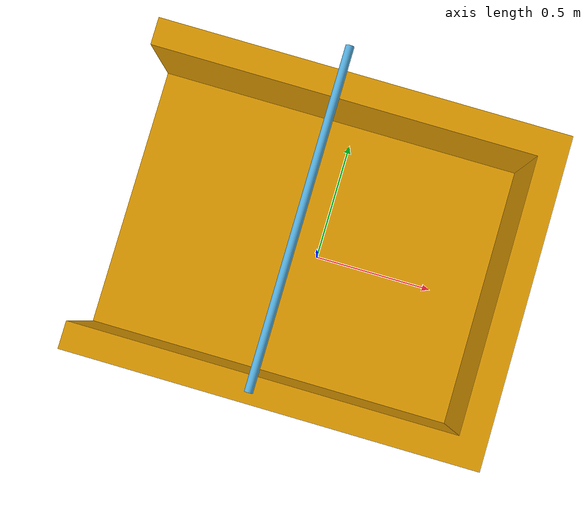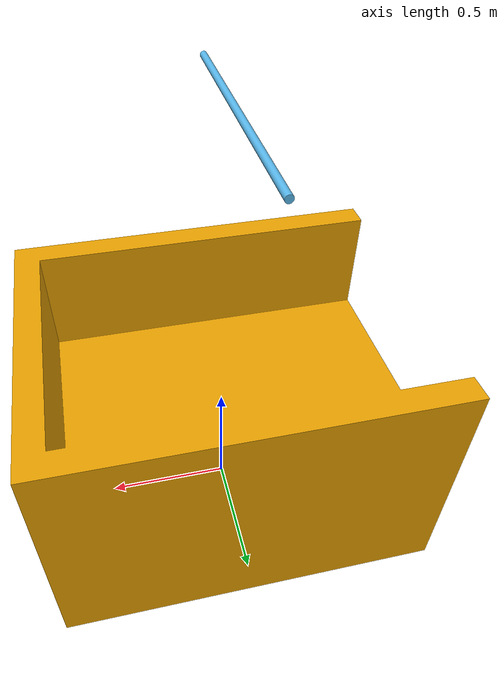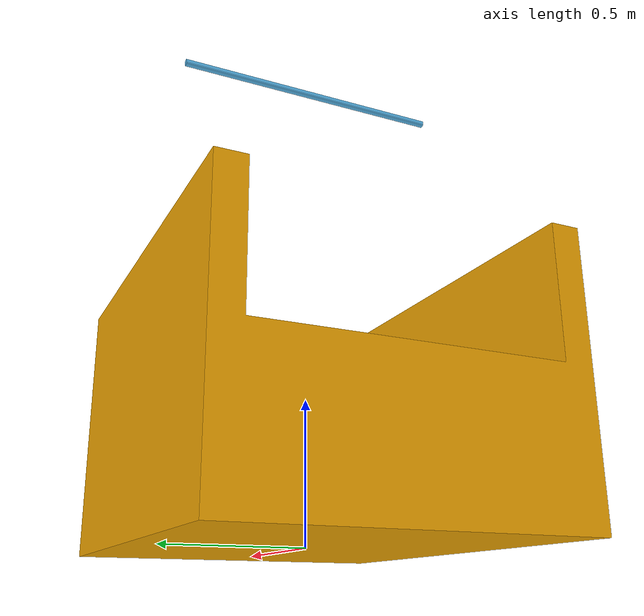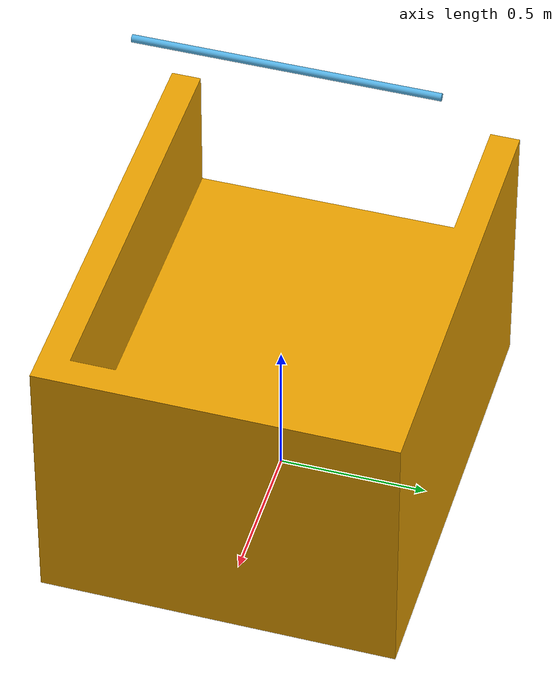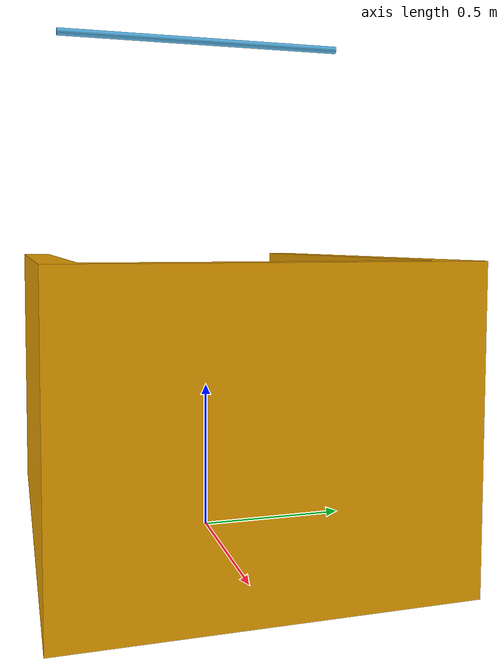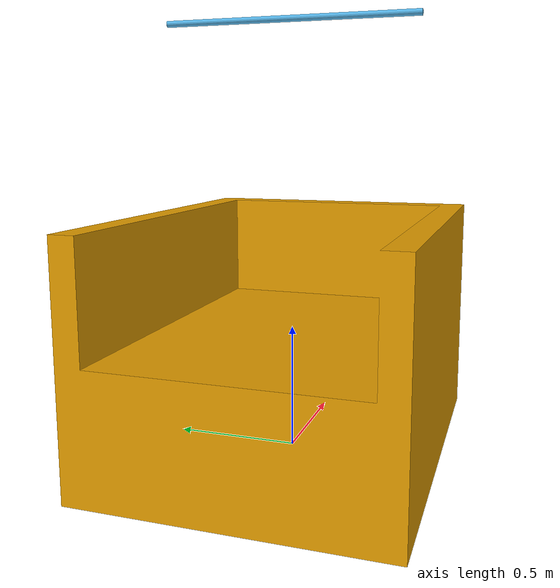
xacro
<?xml version="1.0" ?>

<robot name="conveyor_robot" xmlns:xacro="http://www.ros.org/wiki/xacro">

        <!-- 1st link -->
        <link name='conveyor_frame'>
           <gazebo>
                <static>true</static>
            </gazebo>

            <pose>0 0 0.1 0 0 0</pose>
            <inertial>
                <mass value="100"/>
                <origin rpy="0 0 0" xyz="0 0 0.1"/>
                <inertia
                    ixx = "1000" ixy = "0.00" ixz = "0.00"
                    iyx = "0.00" iyy = "1000" iyz = "0.00"
                    izx = "0.00" izy = "0.00" izz = "1000"/> <!-- High values of ixx, iyy and izz. Conveyor frame must not rotate. S
                                                                Same arguments for mass.-->
            </inertial>
            <collision name="collision_conveyor_frame">
                <geometry>
                    <mesh filename="package://conveyor_plugin/models/conveyor/meshes/conveyer.stl" scale="1 1 1"/>
                </geometry>
            </collision>
            <visual>
                <origin rpy="0 0 0" xyz="0 0 0"/>
                <geometry>
                    <mesh filename="package://conveyor_plugin/models/conveyor/meshes/conveyer.stl" scale="1 1 1"/>
                </geometry>
            </visual>
        </link>

        <!-- 1st joint-->
        <joint name = "joint1" type = "continuous">
            <origin xyz = "0.6 0 0.8" rpy = "0 0 0"/> <!-- TODO add values-->
            <parent link = "conveyor_frame"/>
            <child link = "roller_0"/>
        </joint>

        <!-- second link -->
        <link name="roller_0">
            <pose>0 0 0.1 0 0 0</pose> <!-- TODO add values-->
            <inertial>
                <mass value="0.25"/>
                <origin rpy="0 0 0" xyz="0 0 0.1"/> <!-- TODO add values-->
                <inertia
                    ixx = "0.02087" ixy = "0.00000" ixz = "0.00000"
                    iyx = "0.00000" iyy = "0.02087" iyz = "0.00000"
                    izx = "0.00000" izy = "0.00000" izz = "0.02087"/>
            </inertial>
            <collision name="collision_roller_0">
                <geometry>
                    <mesh filename="package://conveyor_plugin/models/conveyor/meshes/roller.stl" scale="1 1 1"/>
                </geometry>
            </collision>

            <visual>
                <origin rpy="0 0 0" xyz="0 0 0"/>
                <geometry>
                    <mesh filename="package://conveyor_plugin/models/conveyor/meshes/roller.stl" scale="1 1 1"/>
                </geometry>
            </visual>
        </link>
</robot>
